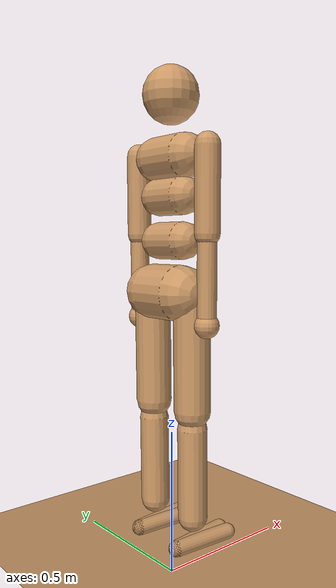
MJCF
<mujoco model='humanoid'>
    <compiler inertiafromgeom='true' angle='degree'/>

    <default>
        <joint limited='true' damping='1' armature='0' />
	<!-- geom contype='1' conaffinity='1' condim='1' rgba='0.8 0.6 .4 1 '-->
        <geom contype='1' conaffinity='1' condim='1' rgba='0.8 0.6 0.4 1'
        	margin="0.001" solref=".02 1" solimp=".8 .8 .01" material="geom"/>
        <motor ctrlrange='-.4 .4' ctrllimited='true'/>
    </default>

    <option timestep='0.002' iterations="50" solver="PGS">
        <flag energy="enable"/>
    </option>

    <visual>
        <map fogstart="3" fogend="5" force="0.1"/>
        <quality shadowsize="2048"/>
    </visual>

    <asset>
        <texture type="skybox" builtin="gradient" width="100" height="100" rgb1=".4 .6 .8"
		rgb2="0 0 0"/>
        <!-- texture name="texgeom" type="cube" builtin="flat" mark="cross" width="127" height="1278"
            rgb1="0.8 0.6 0.4" rgb2="0.8 0.6 0.4" markrgb="1 1 1" random="0.01"/ -->
        <texture name="texgeom" type="cube" builtin="flat" mark="none" width="127" height="1278"
            rgb1="1.0 1.0 1.0"/>
	<texture name="texplane" type="2d" builtin="checker" rgb1=".2 .3 .4" rgb2=".1 0.15 0.2"
		width="100" height="100"/>

	<material name='MatPlane' reflectance='0.5' texture="texplane" texrepeat="1 1" texuniform="true"/>
        <material name='geom' texture="texgeom" texuniform="true"/>
    </asset>

    <worldbody>
        <geom name='floor' pos='0 0 0' size='10 10 0.125' type='plane' material="MatPlane" condim='3'/>

        <body name='torso' pos='0 0 1.4'>
            <light mode='trackcom' directional='false' diffuse='.8 .8 .8' specular='0.3 0.3 0.3' pos='0 0 4.0' dir='0 0 -1'/>

            <geom name='torso1' type='capsule' fromto='0 -.07 0 0 .07 0'  size='0.07' />
            <geom name='head' type='sphere' pos='0 0 .19' size='.09'/>
	    <geom name='uwaist' type='capsule' fromto='-.0 -.06 -.12 -.0 .06 -.12' size='0.06'/>

            <body name='lwaist' pos='-.0 0 -0.260' quat='1.000 0 -0.002 0' >
                <geom name='lwaist' type='capsule' fromto='0 -.06 0 0 .06 0'  size='0.06' />

                <joint name='abdomen_z' type='hinge' pos='0 0 0.065' axis='0 0 -1' range='-180 180' damping='5' stiffness='20' armature='0.02' />
              	<joint name='abdomen_y' type='hinge' pos='0 0 0.065' axis='0 -1 0' range='-180 180' damping='5' stiffness='10' armature='0.02' />
		<!-- TODO : Add Thorax Joint -->

                <body name='pelvis' pos='0 0 -0.165' quat='1.000 0 -0.002 0' >
                    <joint name='abdomen_x' type='hinge' pos='0 0 0.1' axis='-1 0 0' range='-180 180' damping='5' stiffness='10' armature='0.02' />
		    <geom name='butt' type='capsule' fromto='-.02 -.07 0 -.02 .07 0'  size='0.09' />

                    <body name='right_thigh' pos='0 -0.1 -0.04' >
                        <joint name='right_hip_z' type='hinge' pos='0 0 0' axis='0 0 1' range='-180 180'  damping='5' stiffness='10' armature='0.01' />
			<joint name='right_hip_x' type='hinge' pos='0 0 0' axis='1 0 0' range='-180 180'   damping='5' stiffness='10' armature='0.01' />
                        <joint name='right_hip_y' type='hinge' pos='0 0 0' axis='0 1 0' range='-180 180' damping='5' stiffness='20' armature='0.0080' />
                        <geom name='right_thigh1' type='capsule' fromto='0 0 0 0 0.0 -.34'  size='0.06' />
                        <body name='right_shin' pos='0 0.0 -0.40' >
                            <joint name='right_knee' type='hinge' pos='0 0 .02' axis='0 -1 0' range='-180 0' armature='0.0060' />
		    	<geom name='right_shin1' type='capsule' fromto='0 0 0 0 0 -.3'   size='0.049' />

                            <body name='right_foot' pos='0 0 -.39' >
                                <joint name='right_ankle_y' type='hinge' pos='0 0 0.08' axis='0 1 0'   range='-50 50' stiffness='4' armature='0.0008' />
                                <joint name='right_ankle_x' type='hinge' pos='0 0 0.04' axis='1 0 0.5' range='-50 50' stiffness='1'  armature='0.0006' />
                                <geom name='right_foot_cap1' type='capsule' fromto='-.07 -0.0 0 0.14 -0.02 0'  size='0.027' />
                                <geom name='right_foot_cap2' type='capsule' fromto='-.07 0 0 0.14  0.02 0'  size='0.027' />
                            </body>
                        </body>
                    </body>
                    <body name='left_thigh' pos='0 0.1 -0.04' >
                        <joint name='left_hip_z' type='hinge' pos='0 0 0' axis='0 0 1' range='-180 180' damping='5' stiffness='10' armature='0.01' />
                        <joint name='left_hip_x' type='hinge' pos='0 0 0' axis='-1 0 0' range='-180 180'  damping='5' stiffness='10' armature='0.01' />
                        <joint name='left_hip_y' type='hinge' pos='0 0 0' axis='0 1 0' range='-180 180' damping='5' stiffness='20' armature='0.01' />
                        <geom name='left_thigh1' type='capsule' fromto='0 0 0 0 -0.0 -.34'  size='0.06' />
                        <body name='left_shin' pos='0 -0.0 -0.40' >
                            <joint name='left_knee' type='hinge' pos='0 0 .02' axis='0 -1 0' range='-160 0' stiffness='1' armature='0.0060' />
                            <geom name='left_shin1' type='capsule' fromto='0 0 0 0 0 -.3'   size='0.049' />
                            <body name='left_foot' pos='0 0 -.39' >
                                <joint name='left_ankle_y' type='hinge' pos='0 0 0.08' axis='0 1 0'   range='-50 50'  stiffness='4' armature='0.0008' />
                                <joint name='left_ankle_x' type='hinge' pos='0 0 0.04' axis='1 0 0.5' range='-50 50'  stiffness='1'  armature='0.0006' />
                                <geom name='left_foot_cap1' type='capsule' fromto='-.07 0.0 0 0.14 0.02 0'  size='0.027' />
                                <geom name='left_foot_cap2' type='capsule' fromto='-.07 0 0 0.14  -0.02 0'  size='0.027' />
                            </body>
                        </body>
                    </body>
                </body>
            </body>
            <body name='right_upper_arm' pos='0 -0.17 0.02' >
                <!-- joint name='right_shoulder_x' type='hinge' pos='0 0 0' axis='1 0 0'  range='-85 60' stiffness='1' armature='0.0068' / -->
                <joint name='right_shoulder_z' type='hinge' pos='0 0 0' axis='0 0 1' range='-180 180' stiffness='1'  armature='0.0051' />
                <joint name='right_shoulder_y' type='hinge' pos='0 0 0' axis='0 1 0' range='-180 180' stiffness='1'  armature='0.0051' />
                <joint name='right_shoulder_x' type='hinge' pos='0 0 0' axis='1 0 0' range='-180 180' stiffness='1'  armature='0.0051' />
                <geom name='right_uarm1' type='capsule' fromto='0 0 0 0.0 -0.0 -.26'  size='0.04 0.16' />
                <body name='right_lower_arm' pos='.0 -0.0 -.28' >
                    <joint name='right_elbow' type='hinge' pos='0 0 0' axis='1 0 0' range='0 160'  stiffness='0' armature='0.0028' />
                    <geom name='right_larm' type='capsule' fromto='0 0 0 0 0.0 -.26'  size='0.031' />
                    <geom name='right_hand' type='sphere' pos='0 0.0 -.26'  size='0.04'/>
                </body>
            </body>
            <body name='left_upper_arm' pos='0 0.17 0.02' >
                <joint name='left_shoulder_z' type='hinge' pos='0 0 0' axis='0 0 1' range=' -180 180' stiffness='1' armature='0.0068' />
                <joint name='left_shoulder_y' type='hinge' pos='0 0 0' axis='0 1 0' range='-180 180'  stiffness='1' armature='0.0051' />
                <joint name='left_shoulder_x' type='hinge' pos='0 0 0' axis='-1 0 0' range=' -180 180' stiffness='1' armature='0.0068' />
                <geom name='left_uarm1' type='capsule' fromto='0 0 0 0 0.0 -.26'  size='0.04 0.16' />
                <body name='left_lower_arm' pos='0.0 0.0 -.28' >
                    <joint name='left_elbow' type='hinge' pos='0 0 0' axis='-1 0 0' range='0 160' stiffness='0' armature='0.0028' />
                    <geom name='left_larm' type='capsule' fromto='0 0 0 0 -0.0 -0.26'  size='0.031' />
                    <geom name='left_hand' type='sphere' pos='0.0 -0.0 -.26'  size='0.04'/>
                </body>
            </body>
        </body>
    </worldbody>

    <actuator>
        <motor name='abdomen_z'       gear='200' joint='abdomen_z' />
        <motor name='abdomen_y'       gear='200' joint='abdomen_y' />
        <motor name='abdomen_x'       gear='200' joint='abdomen_x' />
        <motor name='right_hip_z'     gear='200' joint='right_hip_z' />
        <motor name='right_hip_x'     gear='200' joint='right_hip_x' />
        <motor name='right_hip_y'     gear='600' joint='right_hip_y' />
        <motor name='right_knee'      gear='400' joint='right_knee' />
        <motor name='right_ankle_x'   gear='100' joint='right_ankle_x' />
        <motor name='right_ankle_y'   gear='100' joint='right_ankle_y' />
        <motor name='left_hip_z'      gear='200' joint='left_hip_z' />
        <motor name='left_hip_x'      gear='200' joint='left_hip_x' />
        <motor name='left_hip_y'      gear='600' joint='left_hip_y' />
        <motor name='left_knee'       gear='400' joint='left_knee' />
        <motor name='left_ankle_x'    gear='100' joint='left_ankle_x' />
        <motor name='left_ankle_y'    gear='100' joint='left_ankle_y' />
        <motor name='right_shoulder_z' gear='100' joint='right_shoulder_z' />
        <motor name='right_shoulder_y' gear='100' joint='right_shoulder_y' />
        <motor name='right_shoulder_x' gear='100' joint='right_shoulder_x' />
        <motor name='right_elbow'     gear='200' joint='right_elbow' />
        <motor name='left_shoulder_z'  gear='100' joint='left_shoulder_z' />
        <motor name='left_shoulder_y'  gear='100' joint='left_shoulder_y' />
	<motor name='left_shoulder_x'  gear='100' joint='left_shoulder_x' />
        <motor name='left_elbow'      gear='200' joint='left_elbow' />
    </actuator>

</mujoco>
